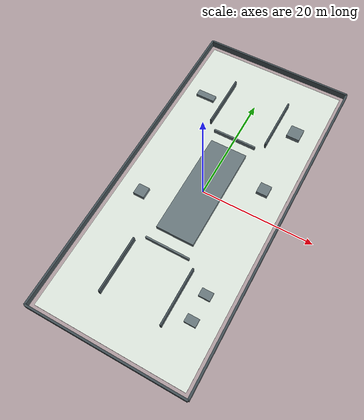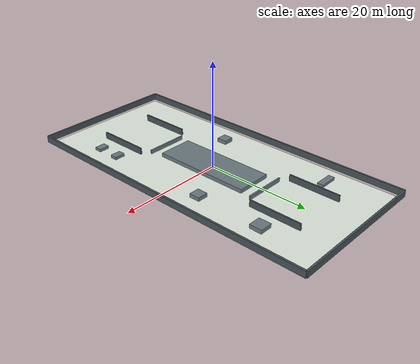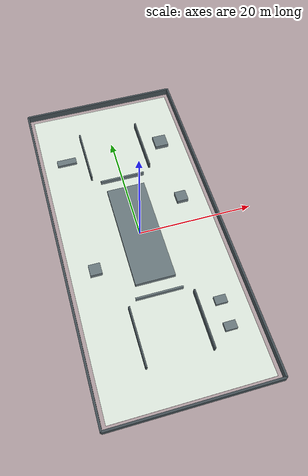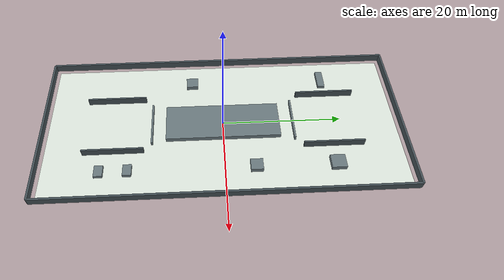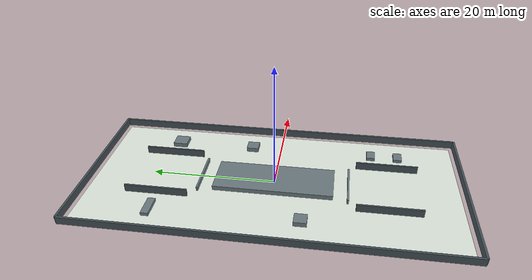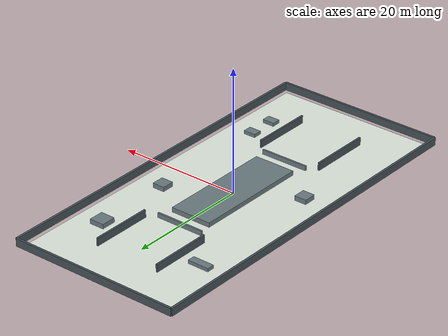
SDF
<?xml version="1.0" ?>
<sdf version="1.6">
  <world name="mall_loop">
    <gravity>0 0 -9.8</gravity>
    <scene>
      <ambient>0.65 0.65 0.65 1</ambient>
      <background>0.78 0.84 0.88 1</background>
    </scene>
    <include>
      <uri>model://sun</uri>
    </include>
    <model name="mall_loop_floor">
      <static>true</static>
      <pose>0.000 0.000 -0.025 0 0 0</pose>
      <link name="floor_link">
        <collision name="floor_collision">
          <geometry>
            <box><size>26.400 58.400 0.050</size></box>
          </geometry>
        </collision>
        <visual name="floor_visual">
          <geometry>
            <box><size>26.400 58.400 0.050</size></box>
          </geometry>
          <material><ambient>0.88 0.92 0.88 1</ambient><diffuse>0.88 0.92 0.88 1</diffuse></material>
        </visual>
      </link>
    </model>
    <model name="outer_north">
      <static>true</static>
      <pose>0.000 30.000 0.625 0 0 0</pose>
      <link name="outer_north_link">
        <collision name="outer_north_collision">
          <geometry>
            <box><size>28.000 0.350 1.250</size></box>
          </geometry>
        </collision>
        <visual name="outer_north_visual">
          <geometry>
            <box><size>28.000 0.350 1.250</size></box>
          </geometry>
          <material><ambient>0.27 0.32 0.34 1</ambient><diffuse>0.27 0.32 0.34 1</diffuse></material>
        </visual>
      </link>
    </model>
    <model name="outer_south">
      <static>true</static>
      <pose>0.000 -30.000 0.625 0 0 0</pose>
      <link name="outer_south_link">
        <collision name="outer_south_collision">
          <geometry>
            <box><size>28.000 0.350 1.250</size></box>
          </geometry>
        </collision>
        <visual name="outer_south_visual">
          <geometry>
            <box><size>28.000 0.350 1.250</size></box>
          </geometry>
          <material><ambient>0.27 0.32 0.34 1</ambient><diffuse>0.27 0.32 0.34 1</diffuse></material>
        </visual>
      </link>
    </model>
    <model name="outer_west">
      <static>true</static>
      <pose>-14.000 0.000 0.625 0 0 0</pose>
      <link name="outer_west_link">
        <collision name="outer_west_collision">
          <geometry>
            <box><size>0.350 60.000 1.250</size></box>
          </geometry>
        </collision>
        <visual name="outer_west_visual">
          <geometry>
            <box><size>0.350 60.000 1.250</size></box>
          </geometry>
          <material><ambient>0.27 0.32 0.34 1</ambient><diffuse>0.27 0.32 0.34 1</diffuse></material>
        </visual>
      </link>
    </model>
    <model name="outer_east">
      <static>true</static>
      <pose>14.000 0.000 0.625 0 0 0</pose>
      <link name="outer_east_link">
        <collision name="outer_east_collision">
          <geometry>
            <box><size>0.350 60.000 1.250</size></box>
          </geometry>
        </collision>
        <visual name="outer_east_visual">
          <geometry>
            <box><size>0.350 60.000 1.250</size></box>
          </geometry>
          <material><ambient>0.27 0.32 0.34 1</ambient><diffuse>0.27 0.32 0.34 1</diffuse></material>
        </visual>
      </link>
    </model>
    <model name="mall_atrium_block">
      <static>true</static>
      <pose>0.000 0.000 0.375 0 0 0</pose>
      <link name="mall_atrium_block_link">
        <collision name="mall_atrium_block_collision">
          <geometry>
            <box><size>6.800 19.000 0.750</size></box>
          </geometry>
        </collision>
        <visual name="mall_atrium_block_visual">
          <geometry>
            <box><size>6.800 19.000 0.750</size></box>
          </geometry>
          <material><ambient>0.42 0.48 0.50 1</ambient><diffuse>0.42 0.48 0.50 1</diffuse></material>
        </visual>
      </link>
    </model>
    <model name="mall_shop_wall_w1">
      <static>true</static>
      <pose>-5.400 -18.000 0.625 0 0 0</pose>
      <link name="mall_shop_wall_w1_link">
        <collision name="mall_shop_wall_w1_collision">
          <geometry>
            <box><size>0.280 10.000 1.250</size></box>
          </geometry>
        </collision>
        <visual name="mall_shop_wall_w1_visual">
          <geometry>
            <box><size>0.280 10.000 1.250</size></box>
          </geometry>
          <material><ambient>0.27 0.32 0.34 1</ambient><diffuse>0.27 0.32 0.34 1</diffuse></material>
        </visual>
      </link>
    </model>
    <model name="mall_shop_wall_w2">
      <static>true</static>
      <pose>-5.400 18.000 0.625 0 0 0</pose>
      <link name="mall_shop_wall_w2_link">
        <collision name="mall_shop_wall_w2_collision">
          <geometry>
            <box><size>0.280 10.000 1.250</size></box>
          </geometry>
        </collision>
        <visual name="mall_shop_wall_w2_visual">
          <geometry>
            <box><size>0.280 10.000 1.250</size></box>
          </geometry>
          <material><ambient>0.27 0.32 0.34 1</ambient><diffuse>0.27 0.32 0.34 1</diffuse></material>
        </visual>
      </link>
    </model>
    <model name="mall_shop_wall_e1">
      <static>true</static>
      <pose>5.400 -18.000 0.625 0 0 0</pose>
      <link name="mall_shop_wall_e1_link">
        <collision name="mall_shop_wall_e1_collision">
          <geometry>
            <box><size>0.280 10.000 1.250</size></box>
          </geometry>
        </collision>
        <visual name="mall_shop_wall_e1_visual">
          <geometry>
            <box><size>0.280 10.000 1.250</size></box>
          </geometry>
          <material><ambient>0.27 0.32 0.34 1</ambient><diffuse>0.27 0.32 0.34 1</diffuse></material>
        </visual>
      </link>
    </model>
    <model name="mall_shop_wall_e2">
      <static>true</static>
      <pose>5.400 18.000 0.625 0 0 0</pose>
      <link name="mall_shop_wall_e2_link">
        <collision name="mall_shop_wall_e2_collision">
          <geometry>
            <box><size>0.280 10.000 1.250</size></box>
          </geometry>
        </collision>
        <visual name="mall_shop_wall_e2_visual">
          <geometry>
            <box><size>0.280 10.000 1.250</size></box>
          </geometry>
          <material><ambient>0.27 0.32 0.34 1</ambient><diffuse>0.27 0.32 0.34 1</diffuse></material>
        </visual>
      </link>
    </model>
    <model name="mall_bridge_s">
      <static>true</static>
      <pose>0.000 -11.800 0.375 0 0 0</pose>
      <link name="mall_bridge_s_link">
        <collision name="mall_bridge_s_collision">
          <geometry>
            <box><size>8.000 0.280 0.750</size></box>
          </geometry>
        </collision>
        <visual name="mall_bridge_s_visual">
          <geometry>
            <box><size>8.000 0.280 0.750</size></box>
          </geometry>
          <material><ambient>0.42 0.48 0.50 1</ambient><diffuse>0.42 0.48 0.50 1</diffuse></material>
        </visual>
      </link>
    </model>
    <model name="mall_bridge_n">
      <static>true</static>
      <pose>0.000 11.800 0.375 0 0 0</pose>
      <link name="mall_bridge_n_link">
        <collision name="mall_bridge_n_collision">
          <geometry>
            <box><size>8.000 0.280 0.750</size></box>
          </geometry>
        </collision>
        <visual name="mall_bridge_n_visual">
          <geometry>
            <box><size>8.000 0.280 0.750</size></box>
          </geometry>
          <material><ambient>0.42 0.48 0.50 1</ambient><diffuse>0.42 0.48 0.50 1</diffuse></material>
        </visual>
      </link>
    </model>
    <model name="mall_kiosk_1">
      <static>true</static>
      <pose>-9.000 -5.000 0.375 0 0 0</pose>
      <link name="mall_kiosk_1_link">
        <collision name="mall_kiosk_1_collision">
          <geometry>
            <box><size>2.000 2.000 0.750</size></box>
          </geometry>
        </collision>
        <visual name="mall_kiosk_1_visual">
          <geometry>
            <box><size>2.000 2.000 0.750</size></box>
          </geometry>
          <material><ambient>0.42 0.48 0.50 1</ambient><diffuse>0.42 0.48 0.50 1</diffuse></material>
        </visual>
      </link>
    </model>
    <model name="mall_kiosk_2">
      <static>true</static>
      <pose>9.000 5.000 0.375 0 0 0</pose>
      <link name="mall_kiosk_2_link">
        <collision name="mall_kiosk_2_collision">
          <geometry>
            <box><size>2.000 2.000 0.750</size></box>
          </geometry>
        </collision>
        <visual name="mall_kiosk_2_visual">
          <geometry>
            <box><size>2.000 2.000 0.750</size></box>
          </geometry>
          <material><ambient>0.42 0.48 0.50 1</ambient><diffuse>0.42 0.48 0.50 1</diffuse></material>
        </visual>
      </link>
    </model>
    <model name="mall_food_table_a">
      <static>true</static>
      <pose>9.000 -20.000 0.275 0 0 0</pose>
      <link name="mall_food_table_a_link">
        <collision name="mall_food_table_a_collision">
          <geometry>
            <box><size>2.000 1.400 0.550</size></box>
          </geometry>
        </collision>
        <visual name="mall_food_table_a_visual">
          <geometry>
            <box><size>2.000 1.400 0.550</size></box>
          </geometry>
          <material><ambient>0.42 0.48 0.50 1</ambient><diffuse>0.42 0.48 0.50 1</diffuse></material>
        </visual>
      </link>
    </model>
    <model name="mall_food_table_b">
      <static>true</static>
      <pose>9.000 -15.500 0.275 0 0 0</pose>
      <link name="mall_food_table_b_link">
        <collision name="mall_food_table_b_collision">
          <geometry>
            <box><size>2.000 1.400 0.550</size></box>
          </geometry>
        </collision>
        <visual name="mall_food_table_b_visual">
          <geometry>
            <box><size>2.000 1.400 0.550</size></box>
          </geometry>
          <material><ambient>0.42 0.48 0.50 1</ambient><diffuse>0.42 0.48 0.50 1</diffuse></material>
        </visual>
      </link>
    </model>
    <model name="mall_jewelry_counter">
      <static>true</static>
      <pose>-9.000 18.000 0.275 0 0 0</pose>
      <link name="mall_jewelry_counter_link">
        <collision name="mall_jewelry_counter_collision">
          <geometry>
            <box><size>3.500 1.200 0.550</size></box>
          </geometry>
        </collision>
        <visual name="mall_jewelry_counter_visual">
          <geometry>
            <box><size>3.500 1.200 0.550</size></box>
          </geometry>
          <material><ambient>0.42 0.48 0.50 1</ambient><diffuse>0.42 0.48 0.50 1</diffuse></material>
        </visual>
      </link>
    </model>
    <model name="mall_kids_play_block">
      <static>true</static>
      <pose>9.000 18.000 0.375 0 0 0</pose>
      <link name="mall_kids_play_block_link">
        <collision name="mall_kids_play_block_collision">
          <geometry>
            <box><size>2.400 2.400 0.750</size></box>
          </geometry>
        </collision>
        <visual name="mall_kids_play_block_visual">
          <geometry>
            <box><size>2.400 2.400 0.750</size></box>
          </geometry>
          <material><ambient>0.42 0.48 0.50 1</ambient><diffuse>0.42 0.48 0.50 1</diffuse></material>
        </visual>
      </link>
    </model>
  </world>
</sdf>
